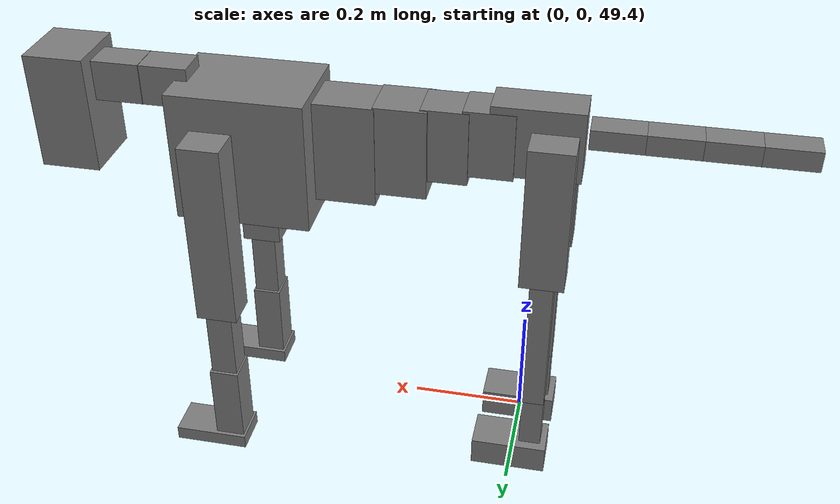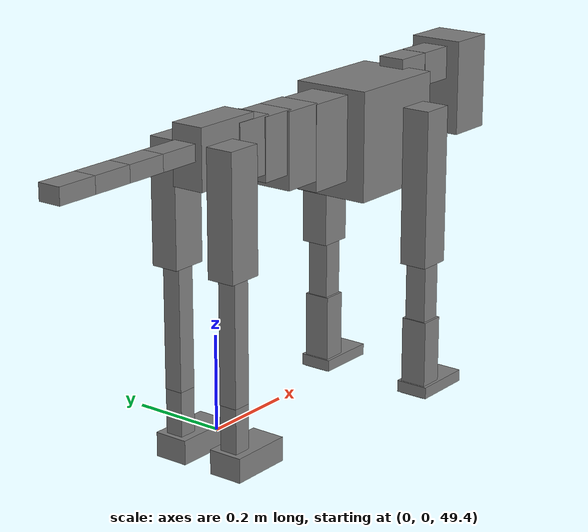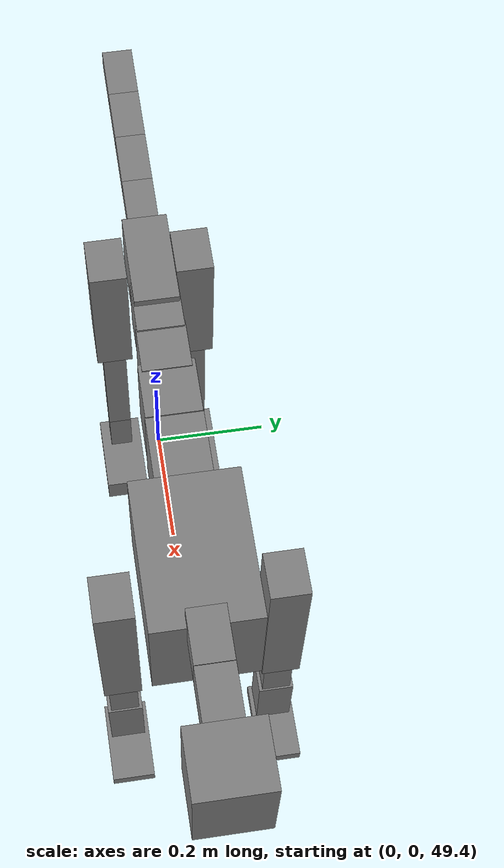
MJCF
<mujoco model="dog">

    <default>
        <joint armature="0.02" stiffness="1" damping="0.2" limited="true"/>
        <geom condim="3" friction="1 0.05 0.05" margin="0.01"/>
        <motor ctrllimited="true" ctrlrange="-1.0 1.0" forcelimited="true" gear="50"/>
    </default>

    <compiler inertiafromgeom="true" angle="radian"/>

    <option timestep="0.016" iterations="50" tolerance="1e-10" solver="Newton" jacobian="dense" cone="pyramidal"/>

    <size nconmax="20000" njmax="60000" nstack="5000000"/>
    <visual>
        <map force="0.1" zfar="30"/>
        <rgba haze="0.15 0.25 0.35 1"/>
        <quality shadowsize="2048"/>
        <global offwidth="800" offheight="800"/>
    </visual>

    <asset>
        <texture type="skybox" builtin="gradient" rgb1="0.3 0.5 0.7" rgb2="0 0 0" width="512" height="512"/>
        <texture name="texplane" type="2d" builtin="checker" rgb1=".2 .3 .4" rgb2=".1 0.15 0.2" width="512" height="512"
                 mark="cross" markrgb=".8 .8 .8"/>
        <texture name="texgeom" type="cube" builtin="flat" mark="cross" width="127" height="1278" rgb1="0.8 0.6 0.4"
                 rgb2="0.8 0.6 0.4" markrgb="1 1 1" random="0.01"/>

        <material name="matplane" reflectance="0.3" texture="texplane" texrepeat="1 1" texuniform="true"/>
        <material name="matgeom" texture="texgeom" texuniform="true" rgba="0.8 0.6 .4 1"/>
    </asset>

    <worldbody>
        <geom name="floor" pos="0 0 0" size="0 0 .25" type="plane" material="matplane" condim="3"/>

        <light directional="false" diffuse=".2 .2 .2" specular="0 0 0" pos="0 0 5" dir="0 0 -1" castshadow="false"/>
        <light mode="targetbodycom" target="torso" directional="false" diffuse=".8 .8 .8" specular="0.3 0.3 0.3"
               pos="0 0 4.0" dir="0 0 -1"/>

        <body name="root" pos="0 0 50">
            <freejoint name="root_1"/>
            <geom type="box" pos="0 0 -0.02" size="0.0774  0.0358  0.063" density="2030"/>

            <body name="spine1" pos="0.054 0 0">
                <joint name="spine1_y" axis="0 1 0" range="0 0.7" limited="true"/>
                <geom type="box" pos="0.02375 0 -0.03" size="0.04375  0.0375  0.05985" density="2030"/>

                <body name="spine2" pos="0.0612 0 0">
                    <joint name="spine2_y" axis="0 1 0" range="-0.15 0.15" limited="true"/>
                    <geom type="box" pos="0.03555  0  -0.04" size="0.04055  0.039  0.06615" density="2030"/>

                    <body name="spine3" pos="0.0730 0 0">
                        <joint name="spine3_y" axis="0 1 0" range="-0.15 0.15" limited="true"/>
                        <geom type="box" pos="0.03555  0  -0.057" size="0.04555  0.0445  0.081" density="2030"/>

                        <body name="spine4" pos="0.0780 0 0">
                            <joint name="spine4_y" axis="0 1 0" range="-0.15 0.15" limited="true"/>
                            <geom type="box" pos="0.05265  0  -0.07" size="0.05265  0.045  0.09135" density="2030"/>

                            <body name="torso" pos="0.1082 0 0">
                                <joint name="torso_y" axis="0 1 0" range="-0.15 0.15" limited="true"/>
                                <geom type="box" pos="0.11925  0  -0.085" size="0.11925  0.085  0.11745"
                                      density="2030"/>

                                <body name="neck1" pos="0.2160  0   0.0180">
                                    <joint name="neck1_y" axis="0 1 0" range="-1.2  -1" limited="true"/>
                                    <geom type="box" pos="0.0423  0  0" size="0.0423  0.03  0.036" density="2325"/>

                                    <body name="neck2" pos="0.0853  0  0">
                                        <joint name="neck2_y" axis="0 1 0" range="0.1  0" limited="true"/>
                                        <geom type="box" pos="0.0423  0  0" size="0.0423  0.03  0.036" density="2325"/>

                                        <body name="head" pos="0.0853  0  0">
                                            <joint name="head_y" axis="0 1 0" range="-0.3  -0.2" limited="true"/>
                                            <geom type="box" pos="0.0531  0  -0.055" size="0.0531  0.06  0.1044"
                                                  density="4030"/>

                                        </body>
                                    </body>
                                </body>

                                <body name="front_shoulder" pos="0.156  0   -0.0480">
                                    <joint name="front_shoulder_y" axis="0 1 0" range="-1 1.5" limited="true"/>
                                    <geom type="box" pos="0 0.13 -0.1438" size="0.0363  0.0310  0.1705" density="1158"/>
                                    <geom type="box" pos="0 -0.13 -0.1438" size="0.0363  0.0310  0.1705"
                                          density="1158"/>

                                    <body name="front_elbow" pos="0  0  -0.2876">
                                        <joint name="front_elbow_y" axis="0 1 0" range="-2 0" limited="true"/>
                                        <geom type="box" pos="0 0.13 -0.0824" size="0.0233  0.0238  0.0824"
                                              density="1081"/>
                                        <geom type="box" pos="0 -0.13 -0.0824" size="0.0233  0.0238  0.0824"
                                              density="1081"/>

                                        <body name="front_wrist" pos="0  0  -0.1648">
                                            <joint name="front_wrist_y" axis="0 1 0" range="-0.2 0" limited="true"/>
                                            <geom type="box" pos="0 0.13 -0.0736" size="0.0264  0.0293  0.0867"
                                                  density="1664"/>
                                            <geom type="box" pos="0 -0.13 -0.0736" size="0.0264  0.0293  0.0867"
                                                  density="1664"/>

                                            <body name="front_finger_end" pos="0  0  -0.1472">
                                                <joint name="front_finger_y" axis="0 1 0" range="-0.4 1"
                                                       limited="true"/>
                                                <geom type="box" pos="0.0365  0.13  0.0022"
                                                      size="0.0669  0.0365  0.0128" density="1515"/>
                                                <geom type="box" pos="0.0365  -0.13  0.0022"
                                                      size="0.0669  0.0365  0.0128" density="1515"/>

                                            </body>

                                        </body>
                                    </body>
                                </body>

                            </body>
                        </body>
                    </body>
                </body>
            </body>

            <body name="back_hip" pos="-0.03 0 -0.018">
                <joint name="back_hip_y" axis="0 1 0" range="-1.5 0.3" limited="true"/>
                <geom type="box" pos="0 0.07 -0.1080" size="0.0385  0.0302  0.1308" density="1154"/>
                <geom type="box" pos="0 -0.07 -0.1080" size="0.0385  0.0302  0.1308" density="1154"/>

                <body name="back_knee" pos="0  0  -0.2160">
                    <joint name="back_knee_y" axis="0 1 0" range="0 2.8" limited="true"/>
                    <geom type="box" pos="0 0.07 -0.1346" size="0.0202  0.0199  0.1501" density="1227"/>
                    <geom type="box" pos="0 -0.07 -0.1346" size="0.0202  0.0199  0.1501" density="1227"/>

                    <body name="back_ankle" pos="0  0  -0.2692">
                        <joint name="back_ankle_y" axis="0 1 0" range="-2.2 0" limited="true"/>
                        <geom type="box" pos="0 0.07 -0.0629" size="0.0197  0.0197  0.0742" density="1284"/>
                        <geom type="box" pos="0 -0.07 -0.0629" size="0.0197  0.0197  0.0742" density="1284"/>

                        <body name="back_toe_end" pos="0  0  -0.1259">
                            <joint name="back_toe_y" axis="0 1 0" range="-0.4 1" limited="true"/>
                            <geom type="box" pos="0.0371  0.07  -0.0109" size="0.0680  0.0371  0.0259" density="1515"/>
                            <geom type="box" pos="0.0371  -0.07  -0.0109" size="0.0680  0.0371  0.0259" density="1515"/>

                        </body>
                    </body>
                </body>
            </body>

            <body name="tail1" pos="-0.074 0 -0.006">
                <joint name="tail1_y" axis="0 1 0" range="-0.2 0.2" limited="true"/>
                <geom type="box" pos="-0.0536  0  0" size="0.045  0.025  0.0175" density="1587"/>

                <body name="tail2" pos="-0.09 0 0">
                    <joint name="tail2_y" axis="0 1 0" range="-0.2 0.2" limited="true"/>
                    <geom type="box" pos="-0.0536  0  0" size="0.045  0.025  0.0175" density="1587"/>

                    <body name="tail3" pos="-0.09 0 0">
                        <joint name="tail3_y" axis="0 1 0" range="-0.2 0.2" limited="true"/>
                        <geom type="box" pos="-0.0536  0  0" size="0.045  0.025  0.0175" density="1587"/>

                        <body name="tail4" pos="-0.09 0 0">
                            <joint name="tail4_y" axis="0 1 0" range="-0.2 0.2" limited="true"/>
                            <geom type="box" pos="-0.0536  0  0" size="0.045  0.025  0.0175" density="1587"/>

                        </body>
                    </body>
                </body>
            </body>
        </body>
    </worldbody>

    <actuator>
        <motor joint="spine1_y" forcerange="-150 150     "/>
        <motor joint="spine2_y" forcerange="-150 150     "/>
        <motor joint="spine3_y" forcerange="-150 150     "/>
        <motor joint="spine4_y" forcerange="-150 150     "/>
        <motor joint="torso_y" forcerange="-150 150     "/>
        <motor joint="neck1_y" forcerange="-100 100       "/>
        <motor joint="neck2_y" forcerange="-100 100       "/>
        <motor joint="head_y" forcerange="-150 150       "/>
        <motor joint="front_shoulder_y" forcerange="-109.17 197.41"/>
        <motor joint="front_elbow_y" forcerange="-126.32 146.82"/>
        <motor joint="front_wrist_y" forcerange="-92.61 141.69"/>
        <motor joint="front_finger_y" forcerange="-66.54 88.04"/>
        <motor joint="back_hip_y" forcerange="-306.50 296.39"/>
        <motor joint="back_knee_y" forcerange="-200.39 288.62"/>
        <motor joint="back_angle_y" forcerange="-55.47 160.13"/>
        <motor joint="back_toe_y" forcerange="-88.65 128.25"/>
        <motor joint="tail1_y" forcerange="-50 50     "/>
        <motor joint="tail2_y" forcerange="-50 50     "/>
        <motor joint="tail3_y" forcerange="-50 50     "/>
        <motor joint="tail4_y" forcerange="-50 50     "/>
    </actuator>
</mujoco>
